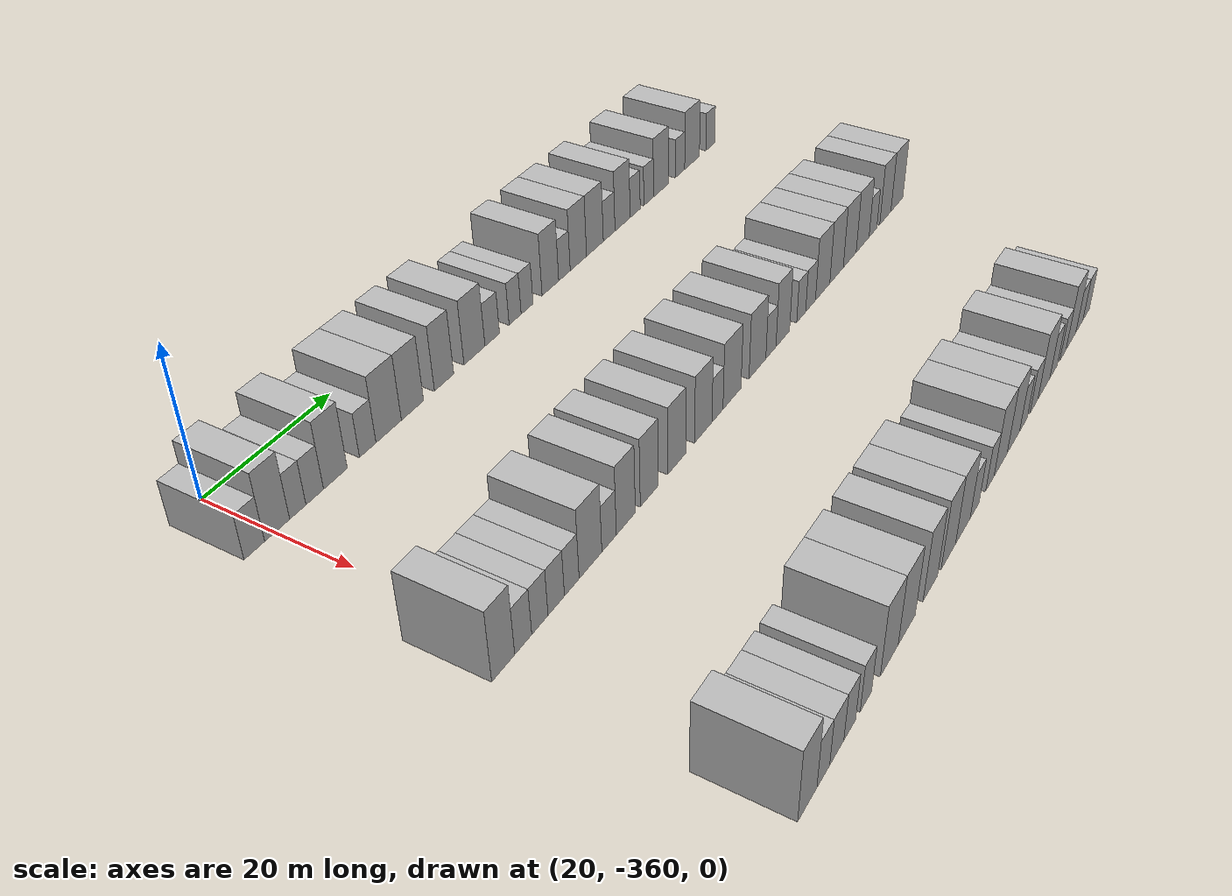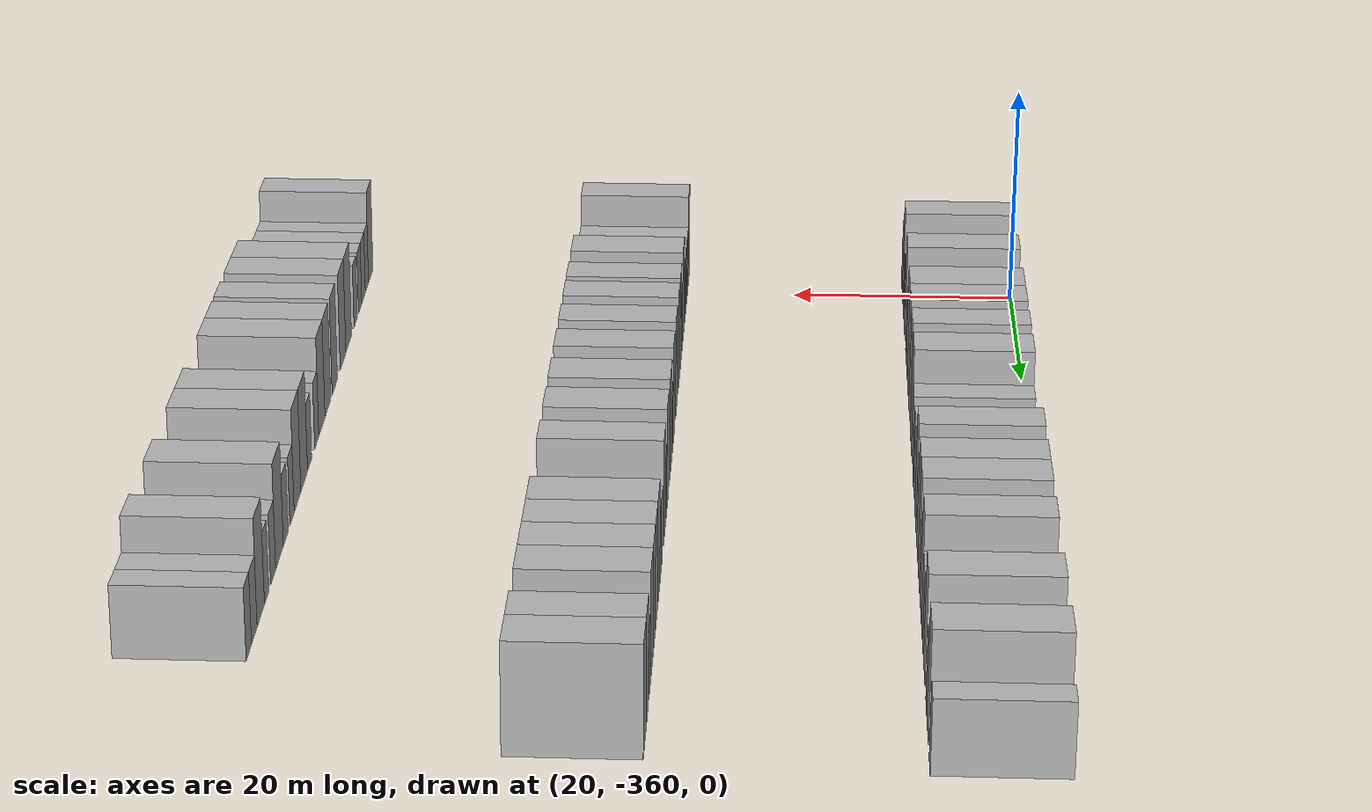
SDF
<sdf version="1.6">
 <world name="default">
  <model name="building_25">
   <static>1</static>
   <pose>25.0000 -362.9609 0 0.000000 0.000000 0.000000</pose>
   <link name="link">
    <pose>0 0 3.00 0 0 0</pose>
    <collision name="collision"><geometry><box><size>10.0000 2.9243 6.0000</size></box></geometry></collision>
    <visual name="visual">
     <cast_shadows>0</cast_shadows>
     <geometry><box><size>10.0000 2.9243 6.0000</size></box></geometry>
     <material>
      <script>
       <uri>model://HANNAS_wall/materials/scripts</uri>
       <uri>model://HANNAS_wall/materials/textures</uri>
       <name>vrc/HANNAS_wall</name>
      </script>
     </material>
    </visual>
   </link>
  </model>
  <model name="building_26">
   <static>1</static>
   <pose>25.0000 -359.6762 0 0.000000 0.000000 0.000000</pose>
   <link name="link">
    <pose>0 0 4.50 0 0 0</pose>
    <collision name="collision"><geometry><box><size>10.0000 3.6451 9.0000</size></box></geometry></collision>
    <visual name="visual">
     <cast_shadows>0</cast_shadows>
     <geometry><box><size>10.0000 3.6451 9.0000</size></box></geometry>
     <material>
      <script>
       <uri>model://HANNAS_wall/materials/scripts</uri>
       <uri>model://HANNAS_wall/materials/textures</uri>
       <name>vrc/HANNAS_wall</name>
      </script>
     </material>
    </visual>
   </link>
  </model>
  <model name="building_27">
   <static>1</static>
   <pose>25.0000 -356.6252 0 0.000000 0.000000 0.000000</pose>
   <link name="link">
    <pose>0 0 3.00 0 0 0</pose>
    <collision name="collision"><geometry><box><size>10.0000 2.4570 6.0000</size></box></geometry></collision>
    <visual name="visual">
     <cast_shadows>0</cast_shadows>
     <geometry><box><size>10.0000 2.4570 6.0000</size></box></geometry>
     <material>
      <script>
       <uri>model://HANNAS_wall/materials/scripts</uri>
       <uri>model://HANNAS_wall/materials/textures</uri>
       <name>vrc/HANNAS_wall</name>
      </script>
     </material>
    </visual>
   </link>
  </model>
  <model name="building_28">
   <static>1</static>
   <pose>25.0000 -354.0434 0 0.000000 0.000000 0.000000</pose>
   <link name="link">
    <pose>0 0 3.00 0 0 0</pose>
    <collision name="collision"><geometry><box><size>10.0000 2.7066 6.0000</size></box></geometry></collision>
    <visual name="visual">
     <cast_shadows>0</cast_shadows>
     <geometry><box><size>10.0000 2.7066 6.0000</size></box></geometry>
     <material>
      <script>
       <uri>model://HANNAS_wall/materials/scripts</uri>
       <uri>model://HANNAS_wall/materials/textures</uri>
       <name>vrc/HANNAS_wall</name>
      </script>
     </material>
    </visual>
   </link>
  </model>
  <model name="building_29">
   <static>1</static>
   <pose>25.0000 -350.8006 0 0.000000 0.000000 0.000000</pose>
   <link name="link">
    <pose>0 0 4.50 0 0 0</pose>
    <collision name="collision"><geometry><box><size>10.0000 3.7789 9.0000</size></box></geometry></collision>
    <visual name="visual">
     <cast_shadows>0</cast_shadows>
     <geometry><box><size>10.0000 3.7789 9.0000</size></box></geometry>
     <material>
      <script>
       <uri>model://HANNAS_wall/materials/scripts</uri>
       <uri>model://HANNAS_wall/materials/textures</uri>
       <name>vrc/HANNAS_wall</name>
      </script>
     </material>
    </visual>
   </link>
  </model>
  <model name="building_30">
   <static>1</static>
   <pose>25.0000 -345.5308 0 0.000000 0.000000 0.000000</pose>
   <link name="link">
    <pose>0 0 3.00 0 0 0</pose>
    <collision name="collision"><geometry><box><size>10.0000 2.7607 6.0000</size></box></geometry></collision>
    <visual name="visual">
     <cast_shadows>0</cast_shadows>
     <geometry><box><size>10.0000 2.7607 6.0000</size></box></geometry>
     <material>
      <script>
       <uri>model://HANNAS_wall/materials/scripts</uri>
       <uri>model://HANNAS_wall/materials/textures</uri>
       <name>vrc/HANNAS_wall</name>
      </script>
     </material>
    </visual>
   </link>
  </model>
  <model name="building_31">
   <static>1</static>
   <pose>25.0000 -341.9601 0 0.000000 0.000000 0.000000</pose>
   <link name="link">
    <pose>0 0 4.50 0 0 0</pose>
    <collision name="collision"><geometry><box><size>10.0000 4.3808 9.0000</size></box></geometry></collision>
    <visual name="visual">
     <cast_shadows>0</cast_shadows>
     <geometry><box><size>10.0000 4.3808 9.0000</size></box></geometry>
     <material>
      <script>
       <uri>model://HANNAS_wall/materials/scripts</uri>
       <uri>model://HANNAS_wall/materials/textures</uri>
       <name>vrc/HANNAS_wall</name>
      </script>
     </material>
    </visual>
   </link>
  </model>
  <model name="building_32">
   <static>1</static>
   <pose>25.0000 -337.7786 0 0.000000 0.000000 0.000000</pose>
   <link name="link">
    <pose>0 0 4.50 0 0 0</pose>
    <collision name="collision"><geometry><box><size>10.0000 3.9821 9.0000</size></box></geometry></collision>
    <visual name="visual">
     <cast_shadows>0</cast_shadows>
     <geometry><box><size>10.0000 3.9821 9.0000</size></box></geometry>
     <material>
      <script>
       <uri>model://HANNAS_wall/materials/scripts</uri>
       <uri>model://HANNAS_wall/materials/textures</uri>
       <name>vrc/HANNAS_wall</name>
      </script>
     </material>
    </visual>
   </link>
  </model>
  <model name="building_33">
   <static>1</static>
   <pose>25.0000 -331.9668 0 0.000000 0.000000 0.000000</pose>
   <link name="link">
    <pose>0 0 4.50 0 0 0</pose>
    <collision name="collision"><geometry><box><size>10.0000 3.6417 9.0000</size></box></geometry></collision>
    <visual name="visual">
     <cast_shadows>0</cast_shadows>
     <geometry><box><size>10.0000 3.6417 9.0000</size></box></geometry>
     <material>
      <script>
       <uri>model://HANNAS_wall/materials/scripts</uri>
       <uri>model://HANNAS_wall/materials/textures</uri>
       <name>vrc/HANNAS_wall</name>
      </script>
     </material>
    </visual>
   </link>
  </model>
  <model name="building_34">
   <static>1</static>
   <pose>25.0000 -326.0694 0 0.000000 0.000000 0.000000</pose>
   <link name="link">
    <pose>0 0 4.50 0 0 0</pose>
    <collision name="collision"><geometry><box><size>10.0000 4.1531 9.0000</size></box></geometry></collision>
    <visual name="visual">
     <cast_shadows>0</cast_shadows>
     <geometry><box><size>10.0000 4.1531 9.0000</size></box></geometry>
     <material>
      <script>
       <uri>model://HANNAS_wall/materials/scripts</uri>
       <uri>model://HANNAS_wall/materials/textures</uri>
       <name>vrc/HANNAS_wall</name>
      </script>
     </material>
    </visual>
   </link>
  </model>
  <model name="building_35">
   <static>1</static>
   <pose>25.0000 -322.5050 0 0.000000 0.000000 0.000000</pose>
   <link name="link">
    <pose>0 0 3.00 0 0 0</pose>
    <collision name="collision"><geometry><box><size>10.0000 2.9756 6.0000</size></box></geometry></collision>
    <visual name="visual">
     <cast_shadows>0</cast_shadows>
     <geometry><box><size>10.0000 2.9756 6.0000</size></box></geometry>
     <material>
      <script>
       <uri>model://HANNAS_wall/materials/scripts</uri>
       <uri>model://HANNAS_wall/materials/textures</uri>
       <name>vrc/HANNAS_wall</name>
      </script>
     </material>
    </visual>
   </link>
  </model>
  <model name="building_36">
   <static>1</static>
   <pose>25.0000 -317.7281 0 0.000000 0.000000 0.000000</pose>
   <link name="link">
    <pose>0 0 3.00 0 0 0</pose>
    <collision name="collision"><geometry><box><size>10.0000 2.5782 6.0000</size></box></geometry></collision>
    <visual name="visual">
     <cast_shadows>0</cast_shadows>
     <geometry><box><size>10.0000 2.5782 6.0000</size></box></geometry>
     <material>
      <script>
       <uri>model://HANNAS_wall/materials/scripts</uri>
       <uri>model://HANNAS_wall/materials/textures</uri>
       <name>vrc/HANNAS_wall</name>
      </script>
     </material>
    </visual>
   </link>
  </model>
  <model name="building_37">
   <static>1</static>
   <pose>25.0000 -315.1455 0 0.000000 0.000000 0.000000</pose>
   <link name="link">
    <pose>0 0 3.00 0 0 0</pose>
    <collision name="collision"><geometry><box><size>10.0000 2.5869 6.0000</size></box></geometry></collision>
    <visual name="visual">
     <cast_shadows>0</cast_shadows>
     <geometry><box><size>10.0000 2.5869 6.0000</size></box></geometry>
     <material>
      <script>
       <uri>model://HANNAS_wall/materials/scripts</uri>
       <uri>model://HANNAS_wall/materials/textures</uri>
       <name>vrc/HANNAS_wall</name>
      </script>
     </material>
    </visual>
   </link>
  </model>
  <model name="building_38">
   <static>1</static>
   <pose>25.0000 -309.9671 0 0.000000 0.000000 0.000000</pose>
   <link name="link">
    <pose>0 0 4.50 0 0 0</pose>
    <collision name="collision"><geometry><box><size>10.0000 3.7700 9.0000</size></box></geometry></collision>
    <visual name="visual">
     <cast_shadows>0</cast_shadows>
     <geometry><box><size>10.0000 3.7700 9.0000</size></box></geometry>
     <material>
      <script>
       <uri>model://HANNAS_wall/materials/scripts</uri>
       <uri>model://HANNAS_wall/materials/textures</uri>
       <name>vrc/HANNAS_wall</name>
      </script>
     </material>
    </visual>
   </link>
  </model>
  <model name="building_39">
   <static>1</static>
   <pose>25.0000 -306.7445 0 0.000000 0.000000 0.000000</pose>
   <link name="link">
    <pose>0 0 3.00 0 0 0</pose>
    <collision name="collision"><geometry><box><size>10.0000 2.6752 6.0000</size></box></geometry></collision>
    <visual name="visual">
     <cast_shadows>0</cast_shadows>
     <geometry><box><size>10.0000 2.6752 6.0000</size></box></geometry>
     <material>
      <script>
       <uri>model://HANNAS_wall/materials/scripts</uri>
       <uri>model://HANNAS_wall/materials/textures</uri>
       <name>vrc/HANNAS_wall</name>
      </script>
     </material>
    </visual>
   </link>
  </model>
  <model name="building_40">
   <static>1</static>
   <pose>25.0000 -303.4571 0 0.000000 0.000000 0.000000</pose>
   <link name="link">
    <pose>0 0 4.50 0 0 0</pose>
    <collision name="collision"><geometry><box><size>10.0000 3.8995 9.0000</size></box></geometry></collision>
    <visual name="visual">
     <cast_shadows>0</cast_shadows>
     <geometry><box><size>10.0000 3.8995 9.0000</size></box></geometry>
     <material>
      <script>
       <uri>model://HANNAS_wall/materials/scripts</uri>
       <uri>model://HANNAS_wall/materials/textures</uri>
       <name>vrc/HANNAS_wall</name>
      </script>
     </material>
    </visual>
   </link>
  </model>
  <model name="building_41">
   <static>1</static>
   <pose>25.0000 -299.4450 0 0.000000 0.000000 0.000000</pose>
   <link name="link">
    <pose>0 0 4.50 0 0 0</pose>
    <collision name="collision"><geometry><box><size>10.0000 4.1248 9.0000</size></box></geometry></collision>
    <visual name="visual">
     <cast_shadows>0</cast_shadows>
     <geometry><box><size>10.0000 4.1248 9.0000</size></box></geometry>
     <material>
      <script>
       <uri>model://HANNAS_wall/materials/scripts</uri>
       <uri>model://HANNAS_wall/materials/textures</uri>
       <name>vrc/HANNAS_wall</name>
      </script>
     </material>
    </visual>
   </link>
  </model>
  <model name="building_42">
   <static>1</static>
   <pose>25.0000 -295.9050 0 0.000000 0.000000 0.000000</pose>
   <link name="link">
    <pose>0 0 3.00 0 0 0</pose>
    <collision name="collision"><geometry><box><size>10.0000 2.9551 6.0000</size></box></geometry></collision>
    <visual name="visual">
     <cast_shadows>0</cast_shadows>
     <geometry><box><size>10.0000 2.9551 6.0000</size></box></geometry>
     <material>
      <script>
       <uri>model://HANNAS_wall/materials/scripts</uri>
       <uri>model://HANNAS_wall/materials/textures</uri>
       <name>vrc/HANNAS_wall</name>
      </script>
     </material>
    </visual>
   </link>
  </model>
  <model name="building_43">
   <static>1</static>
   <pose>25.0000 -292.4702 0 0.000000 0.000000 0.000000</pose>
   <link name="link">
    <pose>0 0 4.50 0 0 0</pose>
    <collision name="collision"><geometry><box><size>10.0000 3.9146 9.0000</size></box></geometry></collision>
    <visual name="visual">
     <cast_shadows>0</cast_shadows>
     <geometry><box><size>10.0000 3.9146 9.0000</size></box></geometry>
     <material>
      <script>
       <uri>model://HANNAS_wall/materials/scripts</uri>
       <uri>model://HANNAS_wall/materials/textures</uri>
       <name>vrc/HANNAS_wall</name>
      </script>
     </material>
    </visual>
   </link>
  </model>
  <model name="building_44">
   <static>1</static>
   <pose>25.0000 -289.1764 0 0.000000 0.000000 0.000000</pose>
   <link name="link">
    <pose>0 0 3.00 0 0 0</pose>
    <collision name="collision"><geometry><box><size>10.0000 2.6730 6.0000</size></box></geometry></collision>
    <visual name="visual">
     <cast_shadows>0</cast_shadows>
     <geometry><box><size>10.0000 2.6730 6.0000</size></box></geometry>
     <material>
      <script>
       <uri>model://HANNAS_wall/materials/scripts</uri>
       <uri>model://HANNAS_wall/materials/textures</uri>
       <name>vrc/HANNAS_wall</name>
      </script>
     </material>
    </visual>
   </link>
  </model>
  <model name="building_45">
   <static>1</static>
   <pose>25.0000 -285.5234 0 0.000000 0.000000 0.000000</pose>
   <link name="link">
    <pose>0 0 3.00 0 0 0</pose>
    <collision name="collision"><geometry><box><size>10.0000 2.6329 6.0000</size></box></geometry></collision>
    <visual name="visual">
     <cast_shadows>0</cast_shadows>
     <geometry><box><size>10.0000 2.6329 6.0000</size></box></geometry>
     <material>
      <script>
       <uri>model://HANNAS_wall/materials/scripts</uri>
       <uri>model://HANNAS_wall/materials/textures</uri>
       <name>vrc/HANNAS_wall</name>
      </script>
     </material>
    </visual>
   </link>
  </model>
  <model name="building_46">
   <static>1</static>
   <pose>25.0000 -282.1227 0 0.000000 0.000000 0.000000</pose>
   <link name="link">
    <pose>0 0 4.50 0 0 0</pose>
    <collision name="collision"><geometry><box><size>10.0000 4.1686 9.0000</size></box></geometry></collision>
    <visual name="visual">
     <cast_shadows>0</cast_shadows>
     <geometry><box><size>10.0000 4.1686 9.0000</size></box></geometry>
     <material>
      <script>
       <uri>model://HANNAS_wall/materials/scripts</uri>
       <uri>model://HANNAS_wall/materials/textures</uri>
       <name>vrc/HANNAS_wall</name>
      </script>
     </material>
    </visual>
   </link>
  </model>
  <model name="building_47">
   <static>1</static>
   <pose>25.0000 -276.6991 0 0.000000 0.000000 0.000000</pose>
   <link name="link">
    <pose>0 0 3.00 0 0 0</pose>
    <collision name="collision"><geometry><box><size>10.0000 2.6786 6.0000</size></box></geometry></collision>
    <visual name="visual">
     <cast_shadows>0</cast_shadows>
     <geometry><box><size>10.0000 2.6786 6.0000</size></box></geometry>
     <material>
      <script>
       <uri>model://HANNAS_wall/materials/scripts</uri>
       <uri>model://HANNAS_wall/materials/textures</uri>
       <name>vrc/HANNAS_wall</name>
      </script>
     </material>
    </visual>
   </link>
  </model>
  <model name="building_48">
   <static>1</static>
   <pose>25.0000 -273.1590 0 0.000000 0.000000 0.000000</pose>
   <link name="link">
    <pose>0 0 4.50 0 0 0</pose>
    <collision name="collision"><geometry><box><size>10.0000 4.4017 9.0000</size></box></geometry></collision>
    <visual name="visual">
     <cast_shadows>0</cast_shadows>
     <geometry><box><size>10.0000 4.4017 9.0000</size></box></geometry>
     <material>
      <script>
       <uri>model://HANNAS_wall/materials/scripts</uri>
       <uri>model://HANNAS_wall/materials/textures</uri>
       <name>vrc/HANNAS_wall</name>
      </script>
     </material>
    </visual>
   </link>
  </model>
  <model name="building_49">
   <static>1</static>
   <pose>25.0000 -267.6129 0 0.000000 0.000000 0.000000</pose>
   <link name="link">
    <pose>0 0 3.00 0 0 0</pose>
    <collision name="collision"><geometry><box><size>10.0000 2.6904 6.0000</size></box></geometry></collision>
    <visual name="visual">
     <cast_shadows>0</cast_shadows>
     <geometry><box><size>10.0000 2.6904 6.0000</size></box></geometry>
     <material>
      <script>
       <uri>model://HANNAS_wall/materials/scripts</uri>
       <uri>model://HANNAS_wall/materials/textures</uri>
       <name>vrc/HANNAS_wall</name>
      </script>
     </material>
    </visual>
   </link>
  </model>
  <model name="building_260">
   <static>1</static>
   <pose>55.0000 -363.2526 0 0.000000 0.000000 0.000000</pose>
   <link name="link">
    <pose>0 0 4.50 0 0 0</pose>
    <collision name="collision"><geometry><box><size>10.0000 3.6219 9.0000</size></box></geometry></collision>
    <visual name="visual">
     <cast_shadows>0</cast_shadows>
     <geometry><box><size>10.0000 3.6219 9.0000</size></box></geometry>
     <material>
      <script>
       <uri>model://HANNAS_wall/materials/scripts</uri>
       <uri>model://HANNAS_wall/materials/textures</uri>
       <name>vrc/HANNAS_wall</name>
      </script>
     </material>
    </visual>
   </link>
  </model>
  <model name="building_261">
   <static>1</static>
   <pose>55.0000 -360.0576 0 0.000000 0.000000 0.000000</pose>
   <link name="link">
    <pose>0 0 3.00 0 0 0</pose>
    <collision name="collision"><geometry><box><size>10.0000 2.7680 6.0000</size></box></geometry></collision>
    <visual name="visual">
     <cast_shadows>0</cast_shadows>
     <geometry><box><size>10.0000 2.7680 6.0000</size></box></geometry>
     <material>
      <script>
       <uri>model://HANNAS_wall/materials/scripts</uri>
       <uri>model://HANNAS_wall/materials/textures</uri>
       <name>vrc/HANNAS_wall</name>
      </script>
     </material>
    </visual>
   </link>
  </model>
  <model name="building_262">
   <static>1</static>
   <pose>55.0000 -357.3143 0 0.000000 0.000000 0.000000</pose>
   <link name="link">
    <pose>0 0 3.00 0 0 0</pose>
    <collision name="collision"><geometry><box><size>10.0000 2.7187 6.0000</size></box></geometry></collision>
    <visual name="visual">
     <cast_shadows>0</cast_shadows>
     <geometry><box><size>10.0000 2.7187 6.0000</size></box></geometry>
     <material>
      <script>
       <uri>model://HANNAS_wall/materials/scripts</uri>
       <uri>model://HANNAS_wall/materials/textures</uri>
       <name>vrc/HANNAS_wall</name>
      </script>
     </material>
    </visual>
   </link>
  </model>
  <model name="building_263">
   <static>1</static>
   <pose>55.0000 -354.5378 0 0.000000 0.000000 0.000000</pose>
   <link name="link">
    <pose>0 0 3.00 0 0 0</pose>
    <collision name="collision"><geometry><box><size>10.0000 2.8343 6.0000</size></box></geometry></collision>
    <visual name="visual">
     <cast_shadows>0</cast_shadows>
     <geometry><box><size>10.0000 2.8343 6.0000</size></box></geometry>
     <material>
      <script>
       <uri>model://HANNAS_wall/materials/scripts</uri>
       <uri>model://HANNAS_wall/materials/textures</uri>
       <name>vrc/HANNAS_wall</name>
      </script>
     </material>
    </visual>
   </link>
  </model>
  <model name="building_264">
   <static>1</static>
   <pose>55.0000 -351.8202 0 0.000000 0.000000 0.000000</pose>
   <link name="link">
    <pose>0 0 3.00 0 0 0</pose>
    <collision name="collision"><geometry><box><size>10.0000 2.6008 6.0000</size></box></geometry></collision>
    <visual name="visual">
     <cast_shadows>0</cast_shadows>
     <geometry><box><size>10.0000 2.6008 6.0000</size></box></geometry>
     <material>
      <script>
       <uri>model://HANNAS_wall/materials/scripts</uri>
       <uri>model://HANNAS_wall/materials/textures</uri>
       <name>vrc/HANNAS_wall</name>
      </script>
     </material>
    </visual>
   </link>
  </model>
  <model name="building_265">
   <static>1</static>
   <pose>55.0000 -348.4335 0 0.000000 0.000000 0.000000</pose>
   <link name="link">
    <pose>0 0 4.50 0 0 0</pose>
    <collision name="collision"><geometry><box><size>10.0000 4.1727 9.0000</size></box></geometry></collision>
    <visual name="visual">
     <cast_shadows>0</cast_shadows>
     <geometry><box><size>10.0000 4.1727 9.0000</size></box></geometry>
     <material>
      <script>
       <uri>model://HANNAS_wall/materials/scripts</uri>
       <uri>model://HANNAS_wall/materials/textures</uri>
       <name>vrc/HANNAS_wall</name>
      </script>
     </material>
    </visual>
   </link>
  </model>
  <model name="building_266">
   <static>1</static>
   <pose>55.0000 -344.9704 0 0.000000 0.000000 0.000000</pose>
   <link name="link">
    <pose>0 0 3.00 0 0 0</pose>
    <collision name="collision"><geometry><box><size>10.0000 2.7534 6.0000</size></box></geometry></collision>
    <visual name="visual">
     <cast_shadows>0</cast_shadows>
     <geometry><box><size>10.0000 2.7534 6.0000</size></box></geometry>
     <material>
      <script>
       <uri>model://HANNAS_wall/materials/scripts</uri>
       <uri>model://HANNAS_wall/materials/textures</uri>
       <name>vrc/HANNAS_wall</name>
      </script>
     </material>
    </visual>
   </link>
  </model>
  <model name="building_267">
   <static>1</static>
   <pose>55.0000 -341.7334 0 0.000000 0.000000 0.000000</pose>
   <link name="link">
    <pose>0 0 4.50 0 0 0</pose>
    <collision name="collision"><geometry><box><size>10.0000 3.7206 9.0000</size></box></geometry></collision>
    <visual name="visual">
     <cast_shadows>0</cast_shadows>
     <geometry><box><size>10.0000 3.7206 9.0000</size></box></geometry>
     <material>
      <script>
       <uri>model://HANNAS_wall/materials/scripts</uri>
       <uri>model://HANNAS_wall/materials/textures</uri>
       <name>vrc/HANNAS_wall</name>
      </script>
     </material>
    </visual>
   </link>
  </model>
  <model name="building_268">
   <static>1</static>
   <pose>55.0000 -337.0198 0 0.000000 0.000000 0.000000</pose>
   <link name="link">
    <pose>0 0 4.50 0 0 0</pose>
    <collision name="collision"><geometry><box><size>10.0000 3.7068 9.0000</size></box></geometry></collision>
    <visual name="visual">
     <cast_shadows>0</cast_shadows>
     <geometry><box><size>10.0000 3.7068 9.0000</size></box></geometry>
     <material>
      <script>
       <uri>model://HANNAS_wall/materials/scripts</uri>
       <uri>model://HANNAS_wall/materials/textures</uri>
       <name>vrc/HANNAS_wall</name>
      </script>
     </material>
    </visual>
   </link>
  </model>
  <model name="building_269">
   <static>1</static>
   <pose>55.0000 -331.2343 0 0.000000 0.000000 0.000000</pose>
   <link name="link">
    <pose>0 0 4.50 0 0 0</pose>
    <collision name="collision"><geometry><box><size>10.0000 3.8641 9.0000</size></box></geometry></collision>
    <visual name="visual">
     <cast_shadows>0</cast_shadows>
     <geometry><box><size>10.0000 3.8641 9.0000</size></box></geometry>
     <material>
      <script>
       <uri>model://HANNAS_wall/materials/scripts</uri>
       <uri>model://HANNAS_wall/materials/textures</uri>
       <name>vrc/HANNAS_wall</name>
      </script>
     </material>
    </visual>
   </link>
  </model>
  <model name="building_270">
   <static>1</static>
   <pose>55.0000 -325.3162 0 0.000000 0.000000 0.000000</pose>
   <link name="link">
    <pose>0 0 4.50 0 0 0</pose>
    <collision name="collision"><geometry><box><size>10.0000 3.9721 9.0000</size></box></geometry></collision>
    <visual name="visual">
     <cast_shadows>0</cast_shadows>
     <geometry><box><size>10.0000 3.9721 9.0000</size></box></geometry>
     <material>
      <script>
       <uri>model://HANNAS_wall/materials/scripts</uri>
       <uri>model://HANNAS_wall/materials/textures</uri>
       <name>vrc/HANNAS_wall</name>
      </script>
     </material>
    </visual>
   </link>
  </model>
  <model name="building_271">
   <static>1</static>
   <pose>55.0000 -322.0267 0 0.000000 0.000000 0.000000</pose>
   <link name="link">
    <pose>0 0 3.00 0 0 0</pose>
    <collision name="collision"><geometry><box><size>10.0000 2.6071 6.0000</size></box></geometry></collision>
    <visual name="visual">
     <cast_shadows>0</cast_shadows>
     <geometry><box><size>10.0000 2.6071 6.0000</size></box></geometry>
     <material>
      <script>
       <uri>model://HANNAS_wall/materials/scripts</uri>
       <uri>model://HANNAS_wall/materials/textures</uri>
       <name>vrc/HANNAS_wall</name>
      </script>
     </material>
    </visual>
   </link>
  </model>
  <model name="building_272">
   <static>1</static>
   <pose>55.0000 -318.5299 0 0.000000 0.000000 0.000000</pose>
   <link name="link">
    <pose>0 0 4.50 0 0 0</pose>
    <collision name="collision"><geometry><box><size>10.0000 4.3866 9.0000</size></box></geometry></collision>
    <visual name="visual">
     <cast_shadows>0</cast_shadows>
     <geometry><box><size>10.0000 4.3866 9.0000</size></box></geometry>
     <material>
      <script>
       <uri>model://HANNAS_wall/materials/scripts</uri>
       <uri>model://HANNAS_wall/materials/textures</uri>
       <name>vrc/HANNAS_wall</name>
      </script>
     </material>
    </visual>
   </link>
  </model>
  <model name="building_273">
   <static>1</static>
   <pose>55.0000 -312.1667 0 0.000000 0.000000 0.000000</pose>
   <link name="link">
    <pose>0 0 4.50 0 0 0</pose>
    <collision name="collision"><geometry><box><size>10.0000 4.3397 9.0000</size></box></geometry></collision>
    <visual name="visual">
     <cast_shadows>0</cast_shadows>
     <geometry><box><size>10.0000 4.3397 9.0000</size></box></geometry>
     <material>
      <script>
       <uri>model://HANNAS_wall/materials/scripts</uri>
       <uri>model://HANNAS_wall/materials/textures</uri>
       <name>vrc/HANNAS_wall</name>
      </script>
     </material>
    </visual>
   </link>
  </model>
  <model name="building_274">
   <static>1</static>
   <pose>55.0000 -308.6492 0 0.000000 0.000000 0.000000</pose>
   <link name="link">
    <pose>0 0 3.00 0 0 0</pose>
    <collision name="collision"><geometry><box><size>10.0000 2.6953 6.0000</size></box></geometry></collision>
    <visual name="visual">
     <cast_shadows>0</cast_shadows>
     <geometry><box><size>10.0000 2.6953 6.0000</size></box></geometry>
     <material>
      <script>
       <uri>model://HANNAS_wall/materials/scripts</uri>
       <uri>model://HANNAS_wall/materials/textures</uri>
       <name>vrc/HANNAS_wall</name>
      </script>
     </material>
    </visual>
   </link>
  </model>
  <model name="building_275">
   <static>1</static>
   <pose>55.0000 -305.4517 0 0.000000 0.000000 0.000000</pose>
   <link name="link">
    <pose>0 0 4.50 0 0 0</pose>
    <collision name="collision"><geometry><box><size>10.0000 3.6998 9.0000</size></box></geometry></collision>
    <visual name="visual">
     <cast_shadows>0</cast_shadows>
     <geometry><box><size>10.0000 3.6998 9.0000</size></box></geometry>
     <material>
      <script>
       <uri>model://HANNAS_wall/materials/scripts</uri>
       <uri>model://HANNAS_wall/materials/textures</uri>
       <name>vrc/HANNAS_wall</name>
      </script>
     </material>
    </visual>
   </link>
  </model>
  <model name="building_276">
   <static>1</static>
   <pose>55.0000 -300.3296 0 0.000000 0.000000 0.000000</pose>
   <link name="link">
    <pose>0 0 3.00 0 0 0</pose>
    <collision name="collision"><geometry><box><size>10.0000 2.5444 6.0000</size></box></geometry></collision>
    <visual name="visual">
     <cast_shadows>0</cast_shadows>
     <geometry><box><size>10.0000 2.5444 6.0000</size></box></geometry>
     <material>
      <script>
       <uri>model://HANNAS_wall/materials/scripts</uri>
       <uri>model://HANNAS_wall/materials/textures</uri>
       <name>vrc/HANNAS_wall</name>
      </script>
     </material>
    </visual>
   </link>
  </model>
  <model name="building_277">
   <static>1</static>
   <pose>55.0000 -297.6324 0 0.000000 0.000000 0.000000</pose>
   <link name="link">
    <pose>0 0 3.00 0 0 0</pose>
    <collision name="collision"><geometry><box><size>10.0000 2.8501 6.0000</size></box></geometry></collision>
    <visual name="visual">
     <cast_shadows>0</cast_shadows>
     <geometry><box><size>10.0000 2.8501 6.0000</size></box></geometry>
     <material>
      <script>
       <uri>model://HANNAS_wall/materials/scripts</uri>
       <uri>model://HANNAS_wall/materials/textures</uri>
       <name>vrc/HANNAS_wall</name>
      </script>
     </material>
    </visual>
   </link>
  </model>
  <model name="building_278">
   <static>1</static>
   <pose>55.0000 -294.0642 0 0.000000 0.000000 0.000000</pose>
   <link name="link">
    <pose>0 0 4.50 0 0 0</pose>
    <collision name="collision"><geometry><box><size>10.0000 4.2862 9.0000</size></box></geometry></collision>
    <visual name="visual">
     <cast_shadows>0</cast_shadows>
     <geometry><box><size>10.0000 4.2862 9.0000</size></box></geometry>
     <material>
      <script>
       <uri>model://HANNAS_wall/materials/scripts</uri>
       <uri>model://HANNAS_wall/materials/textures</uri>
       <name>vrc/HANNAS_wall</name>
      </script>
     </material>
    </visual>
   </link>
  </model>
  <model name="building_279">
   <static>1</static>
   <pose>55.0000 -289.8347 0 0.000000 0.000000 0.000000</pose>
   <link name="link">
    <pose>0 0 4.50 0 0 0</pose>
    <collision name="collision"><geometry><box><size>10.0000 4.1728 9.0000</size></box></geometry></collision>
    <visual name="visual">
     <cast_shadows>0</cast_shadows>
     <geometry><box><size>10.0000 4.1728 9.0000</size></box></geometry>
     <material>
      <script>
       <uri>model://HANNAS_wall/materials/scripts</uri>
       <uri>model://HANNAS_wall/materials/textures</uri>
       <name>vrc/HANNAS_wall</name>
      </script>
     </material>
    </visual>
   </link>
  </model>
  <model name="building_280">
   <static>1</static>
   <pose>55.0000 -285.6936 0 0.000000 0.000000 0.000000</pose>
   <link name="link">
    <pose>0 0 4.50 0 0 0</pose>
    <collision name="collision"><geometry><box><size>10.0000 4.1095 9.0000</size></box></geometry></collision>
    <visual name="visual">
     <cast_shadows>0</cast_shadows>
     <geometry><box><size>10.0000 4.1095 9.0000</size></box></geometry>
     <material>
      <script>
       <uri>model://HANNAS_wall/materials/scripts</uri>
       <uri>model://HANNAS_wall/materials/textures</uri>
       <name>vrc/HANNAS_wall</name>
      </script>
     </material>
    </visual>
   </link>
  </model>
  <model name="building_281">
   <static>1</static>
   <pose>55.0000 -281.5155 0 0.000000 0.000000 0.000000</pose>
   <link name="link">
    <pose>0 0 4.50 0 0 0</pose>
    <collision name="collision"><geometry><box><size>10.0000 4.2467 9.0000</size></box></geometry></collision>
    <visual name="visual">
     <cast_shadows>0</cast_shadows>
     <geometry><box><size>10.0000 4.2467 9.0000</size></box></geometry>
     <material>
      <script>
       <uri>model://HANNAS_wall/materials/scripts</uri>
       <uri>model://HANNAS_wall/materials/textures</uri>
       <name>vrc/HANNAS_wall</name>
      </script>
     </material>
    </visual>
   </link>
  </model>
  <model name="building_282">
   <static>1</static>
   <pose>55.0000 -278.0725 0 0.000000 0.000000 0.000000</pose>
   <link name="link">
    <pose>0 0 3.00 0 0 0</pose>
    <collision name="collision"><geometry><box><size>10.0000 2.6393 6.0000</size></box></geometry></collision>
    <visual name="visual">
     <cast_shadows>0</cast_shadows>
     <geometry><box><size>10.0000 2.6393 6.0000</size></box></geometry>
     <material>
      <script>
       <uri>model://HANNAS_wall/materials/scripts</uri>
       <uri>model://HANNAS_wall/materials/textures</uri>
       <name>vrc/HANNAS_wall</name>
      </script>
     </material>
    </visual>
   </link>
  </model>
  <model name="building_283">
   <static>1</static>
   <pose>55.0000 -273.8058 0 0.000000 0.000000 0.000000</pose>
   <link name="link">
    <pose>0 0 4.50 0 0 0</pose>
    <collision name="collision"><geometry><box><size>10.0000 3.8942 9.0000</size></box></geometry></collision>
    <visual name="visual">
     <cast_shadows>0</cast_shadows>
     <geometry><box><size>10.0000 3.8942 9.0000</size></box></geometry>
     <material>
      <script>
       <uri>model://HANNAS_wall/materials/scripts</uri>
       <uri>model://HANNAS_wall/materials/textures</uri>
       <name>vrc/HANNAS_wall</name>
      </script>
     </material>
    </visual>
   </link>
  </model>
  <model name="building_284">
   <static>1</static>
   <pose>55.0000 -269.7121 0 0.000000 0.000000 0.000000</pose>
   <link name="link">
    <pose>0 0 4.50 0 0 0</pose>
    <collision name="collision"><geometry><box><size>10.0000 4.2932 9.0000</size></box></geometry></collision>
    <visual name="visual">
     <cast_shadows>0</cast_shadows>
     <geometry><box><size>10.0000 4.2932 9.0000</size></box></geometry>
     <material>
      <script>
       <uri>model://HANNAS_wall/materials/scripts</uri>
       <uri>model://HANNAS_wall/materials/textures</uri>
       <name>vrc/HANNAS_wall</name>
      </script>
     </material>
    </visual>
   </link>
  </model>
  <model name="building_488">
   <static>1</static>
   <pose>85.0000 -362.9184 0 0.000000 0.000000 0.000000</pose>
   <link name="link">
    <pose>0 0 4.50 0 0 0</pose>
    <collision name="collision"><geometry><box><size>10.0000 3.7234 9.0000</size></box></geometry></collision>
    <visual name="visual">
     <cast_shadows>0</cast_shadows>
     <geometry><box><size>10.0000 3.7234 9.0000</size></box></geometry>
     <material>
      <script>
       <uri>model://HANNAS_wall/materials/scripts</uri>
       <uri>model://HANNAS_wall/materials/textures</uri>
       <name>vrc/HANNAS_wall</name>
      </script>
     </material>
    </visual>
   </link>
  </model>
  <model name="building_489">
   <static>1</static>
   <pose>85.0000 -359.7767 0 0.000000 0.000000 0.000000</pose>
   <link name="link">
    <pose>0 0 3.00 0 0 0</pose>
    <collision name="collision"><geometry><box><size>10.0000 2.5599 6.0000</size></box></geometry></collision>
    <visual name="visual">
     <cast_shadows>0</cast_shadows>
     <geometry><box><size>10.0000 2.5599 6.0000</size></box></geometry>
     <material>
      <script>
       <uri>model://HANNAS_wall/materials/scripts</uri>
       <uri>model://HANNAS_wall/materials/textures</uri>
       <name>vrc/HANNAS_wall</name>
      </script>
     </material>
    </visual>
   </link>
  </model>
  <model name="building_490">
   <static>1</static>
   <pose>85.0000 -357.0274 0 0.000000 0.000000 0.000000</pose>
   <link name="link">
    <pose>0 0 3.00 0 0 0</pose>
    <collision name="collision"><geometry><box><size>10.0000 2.9387 6.0000</size></box></geometry></collision>
    <visual name="visual">
     <cast_shadows>0</cast_shadows>
     <geometry><box><size>10.0000 2.9387 6.0000</size></box></geometry>
     <material>
      <script>
       <uri>model://HANNAS_wall/materials/scripts</uri>
       <uri>model://HANNAS_wall/materials/textures</uri>
       <name>vrc/HANNAS_wall</name>
      </script>
     </material>
    </visual>
   </link>
  </model>
  <model name="building_491">
   <static>1</static>
   <pose>85.0000 -354.3029 0 0.000000 0.000000 0.000000</pose>
   <link name="link">
    <pose>0 0 3.00 0 0 0</pose>
    <collision name="collision"><geometry><box><size>10.0000 2.5103 6.0000</size></box></geometry></collision>
    <visual name="visual">
     <cast_shadows>0</cast_shadows>
     <geometry><box><size>10.0000 2.5103 6.0000</size></box></geometry>
     <material>
      <script>
       <uri>model://HANNAS_wall/materials/scripts</uri>
       <uri>model://HANNAS_wall/materials/textures</uri>
       <name>vrc/HANNAS_wall</name>
      </script>
     </material>
    </visual>
   </link>
  </model>
  <model name="building_492">
   <static>1</static>
   <pose>85.0000 -350.7763 0 0.000000 0.000000 0.000000</pose>
   <link name="link">
    <pose>0 0 3.00 0 0 0</pose>
    <collision name="collision"><geometry><box><size>10.0000 2.5428 6.0000</size></box></geometry></collision>
    <visual name="visual">
     <cast_shadows>0</cast_shadows>
     <geometry><box><size>10.0000 2.5428 6.0000</size></box></geometry>
     <material>
      <script>
       <uri>model://HANNAS_wall/materials/scripts</uri>
       <uri>model://HANNAS_wall/materials/textures</uri>
       <name>vrc/HANNAS_wall</name>
      </script>
     </material>
    </visual>
   </link>
  </model>
  <model name="building_493">
   <static>1</static>
   <pose>85.0000 -345.3913 0 0.000000 0.000000 0.000000</pose>
   <link name="link">
    <pose>0 0 4.50 0 0 0</pose>
    <collision name="collision"><geometry><box><size>10.0000 4.2272 9.0000</size></box></geometry></collision>
    <visual name="visual">
     <cast_shadows>0</cast_shadows>
     <geometry><box><size>10.0000 4.2272 9.0000</size></box></geometry>
     <material>
      <script>
       <uri>model://HANNAS_wall/materials/scripts</uri>
       <uri>model://HANNAS_wall/materials/textures</uri>
       <name>vrc/HANNAS_wall</name>
      </script>
     </material>
    </visual>
   </link>
  </model>
  <model name="building_494">
   <static>1</static>
   <pose>85.0000 -341.1644 0 0.000000 0.000000 0.000000</pose>
   <link name="link">
    <pose>0 0 4.50 0 0 0</pose>
    <collision name="collision"><geometry><box><size>10.0000 4.2266 9.0000</size></box></geometry></collision>
    <visual name="visual">
     <cast_shadows>0</cast_shadows>
     <geometry><box><size>10.0000 4.2266 9.0000</size></box></geometry>
     <material>
      <script>
       <uri>model://HANNAS_wall/materials/scripts</uri>
       <uri>model://HANNAS_wall/materials/textures</uri>
       <name>vrc/HANNAS_wall</name>
      </script>
     </material>
    </visual>
   </link>
  </model>
  <model name="building_495">
   <static>1</static>
   <pose>85.0000 -335.1422 0 0.000000 0.000000 0.000000</pose>
   <link name="link">
    <pose>0 0 4.50 0 0 0</pose>
    <collision name="collision"><geometry><box><size>10.0000 3.8176 9.0000</size></box></geometry></collision>
    <visual name="visual">
     <cast_shadows>0</cast_shadows>
     <geometry><box><size>10.0000 3.8176 9.0000</size></box></geometry>
     <material>
      <script>
       <uri>model://HANNAS_wall/materials/scripts</uri>
       <uri>model://HANNAS_wall/materials/textures</uri>
       <name>vrc/HANNAS_wall</name>
      </script>
     </material>
    </visual>
   </link>
  </model>
  <model name="building_496">
   <static>1</static>
   <pose>85.0000 -330.2532 0 0.000000 0.000000 0.000000</pose>
   <link name="link">
    <pose>0 0 4.50 0 0 0</pose>
    <collision name="collision"><geometry><box><size>10.0000 3.9604 9.0000</size></box></geometry></collision>
    <visual name="visual">
     <cast_shadows>0</cast_shadows>
     <geometry><box><size>10.0000 3.9604 9.0000</size></box></geometry>
     <material>
      <script>
       <uri>model://HANNAS_wall/materials/scripts</uri>
       <uri>model://HANNAS_wall/materials/textures</uri>
       <name>vrc/HANNAS_wall</name>
      </script>
     </material>
    </visual>
   </link>
  </model>
  <model name="building_497">
   <static>1</static>
   <pose>85.0000 -326.1658 0 0.000000 0.000000 0.000000</pose>
   <link name="link">
    <pose>0 0 4.50 0 0 0</pose>
    <collision name="collision"><geometry><box><size>10.0000 4.2145 9.0000</size></box></geometry></collision>
    <visual name="visual">
     <cast_shadows>0</cast_shadows>
     <geometry><box><size>10.0000 4.2145 9.0000</size></box></geometry>
     <material>
      <script>
       <uri>model://HANNAS_wall/materials/scripts</uri>
       <uri>model://HANNAS_wall/materials/textures</uri>
       <name>vrc/HANNAS_wall</name>
      </script>
     </material>
    </visual>
   </link>
  </model>
  <model name="building_498">
   <static>1</static>
   <pose>85.0000 -322.7018 0 0.000000 0.000000 0.000000</pose>
   <link name="link">
    <pose>0 0 3.00 0 0 0</pose>
    <collision name="collision"><geometry><box><size>10.0000 2.7136 6.0000</size></box></geometry></collision>
    <visual name="visual">
     <cast_shadows>0</cast_shadows>
     <geometry><box><size>10.0000 2.7136 6.0000</size></box></geometry>
     <material>
      <script>
       <uri>model://HANNAS_wall/materials/scripts</uri>
       <uri>model://HANNAS_wall/materials/textures</uri>
       <name>vrc/HANNAS_wall</name>
      </script>
     </material>
    </visual>
   </link>
  </model>
  <model name="building_499">
   <static>1</static>
   <pose>85.0000 -318.0299 0 0.000000 0.000000 0.000000</pose>
   <link name="link">
    <pose>0 0 3.00 0 0 0</pose>
    <collision name="collision"><geometry><box><size>10.0000 2.6300 6.0000</size></box></geometry></collision>
    <visual name="visual">
     <cast_shadows>0</cast_shadows>
     <geometry><box><size>10.0000 2.6300 6.0000</size></box></geometry>
     <material>
      <script>
       <uri>model://HANNAS_wall/materials/scripts</uri>
       <uri>model://HANNAS_wall/materials/textures</uri>
       <name>vrc/HANNAS_wall</name>
      </script>
     </material>
    </visual>
   </link>
  </model>
  <model name="building_500">
   <static>1</static>
   <pose>85.0000 -314.5960 0 0.000000 0.000000 0.000000</pose>
   <link name="link">
    <pose>0 0 4.50 0 0 0</pose>
    <collision name="collision"><geometry><box><size>10.0000 4.2379 9.0000</size></box></geometry></collision>
    <visual name="visual">
     <cast_shadows>0</cast_shadows>
     <geometry><box><size>10.0000 4.2379 9.0000</size></box></geometry>
     <material>
      <script>
       <uri>model://HANNAS_wall/materials/scripts</uri>
       <uri>model://HANNAS_wall/materials/textures</uri>
       <name>vrc/HANNAS_wall</name>
      </script>
     </material>
    </visual>
   </link>
  </model>
  <model name="building_501">
   <static>1</static>
   <pose>85.0000 -310.3951 0 0.000000 0.000000 0.000000</pose>
   <link name="link">
    <pose>0 0 4.50 0 0 0</pose>
    <collision name="collision"><geometry><box><size>10.0000 4.1639 9.0000</size></box></geometry></collision>
    <visual name="visual">
     <cast_shadows>0</cast_shadows>
     <geometry><box><size>10.0000 4.1639 9.0000</size></box></geometry>
     <material>
      <script>
       <uri>model://HANNAS_wall/materials/scripts</uri>
       <uri>model://HANNAS_wall/materials/textures</uri>
       <name>vrc/HANNAS_wall</name>
      </script>
     </material>
    </visual>
   </link>
  </model>
  <model name="building_502">
   <static>1</static>
   <pose>85.0000 -307.0074 0 0.000000 0.000000 0.000000</pose>
   <link name="link">
    <pose>0 0 3.00 0 0 0</pose>
    <collision name="collision"><geometry><box><size>10.0000 2.6115 6.0000</size></box></geometry></collision>
    <visual name="visual">
     <cast_shadows>0</cast_shadows>
     <geometry><box><size>10.0000 2.6115 6.0000</size></box></geometry>
     <material>
      <script>
       <uri>model://HANNAS_wall/materials/scripts</uri>
       <uri>model://HANNAS_wall/materials/textures</uri>
       <name>vrc/HANNAS_wall</name>
      </script>
     </material>
    </visual>
   </link>
  </model>
  <model name="building_503">
   <static>1</static>
   <pose>85.0000 -303.2699 0 0.000000 0.000000 0.000000</pose>
   <link name="link">
    <pose>0 0 3.00 0 0 0</pose>
    <collision name="collision"><geometry><box><size>10.0000 2.8635 6.0000</size></box></geometry></collision>
    <visual name="visual">
     <cast_shadows>0</cast_shadows>
     <geometry><box><size>10.0000 2.8635 6.0000</size></box></geometry>
     <material>
      <script>
       <uri>model://HANNAS_wall/materials/scripts</uri>
       <uri>model://HANNAS_wall/materials/textures</uri>
       <name>vrc/HANNAS_wall</name>
      </script>
     </material>
    </visual>
   </link>
  </model>
  <model name="building_504">
   <static>1</static>
   <pose>85.0000 -299.6345 0 0.000000 0.000000 0.000000</pose>
   <link name="link">
    <pose>0 0 4.50 0 0 0</pose>
    <collision name="collision"><geometry><box><size>10.0000 4.4074 9.0000</size></box></geometry></collision>
    <visual name="visual">
     <cast_shadows>0</cast_shadows>
     <geometry><box><size>10.0000 4.4074 9.0000</size></box></geometry>
     <material>
      <script>
       <uri>model://HANNAS_wall/materials/scripts</uri>
       <uri>model://HANNAS_wall/materials/textures</uri>
       <name>vrc/HANNAS_wall</name>
      </script>
     </material>
    </visual>
   </link>
  </model>
  <model name="building_505">
   <static>1</static>
   <pose>85.0000 -296.0098 0 0.000000 0.000000 0.000000</pose>
   <link name="link">
    <pose>0 0 3.00 0 0 0</pose>
    <collision name="collision"><geometry><box><size>10.0000 2.8419 6.0000</size></box></geometry></collision>
    <visual name="visual">
     <cast_shadows>0</cast_shadows>
     <geometry><box><size>10.0000 2.8419 6.0000</size></box></geometry>
     <material>
      <script>
       <uri>model://HANNAS_wall/materials/scripts</uri>
       <uri>model://HANNAS_wall/materials/textures</uri>
       <name>vrc/HANNAS_wall</name>
      </script>
     </material>
    </visual>
   </link>
  </model>
  <model name="building_506">
   <static>1</static>
   <pose>85.0000 -292.3769 0 0.000000 0.000000 0.000000</pose>
   <link name="link">
    <pose>0 0 3.00 0 0 0</pose>
    <collision name="collision"><geometry><box><size>10.0000 2.4240 6.0000</size></box></geometry></collision>
    <visual name="visual">
     <cast_shadows>0</cast_shadows>
     <geometry><box><size>10.0000 2.4240 6.0000</size></box></geometry>
     <material>
      <script>
       <uri>model://HANNAS_wall/materials/scripts</uri>
       <uri>model://HANNAS_wall/materials/textures</uri>
       <name>vrc/HANNAS_wall</name>
      </script>
     </material>
    </visual>
   </link>
  </model>
  <model name="building_507">
   <static>1</static>
   <pose>85.0000 -289.1741 0 0.000000 0.000000 0.000000</pose>
   <link name="link">
    <pose>0 0 4.50 0 0 0</pose>
    <collision name="collision"><geometry><box><size>10.0000 3.9816 9.0000</size></box></geometry></collision>
    <visual name="visual">
     <cast_shadows>0</cast_shadows>
     <geometry><box><size>10.0000 3.9816 9.0000</size></box></geometry>
     <material>
      <script>
       <uri>model://HANNAS_wall/materials/scripts</uri>
       <uri>model://HANNAS_wall/materials/textures</uri>
       <name>vrc/HANNAS_wall</name>
      </script>
     </material>
    </visual>
   </link>
  </model>
  <model name="building_508">
   <static>1</static>
   <pose>85.0000 -285.7030 0 0.000000 0.000000 0.000000</pose>
   <link name="link">
    <pose>0 0 3.00 0 0 0</pose>
    <collision name="collision"><geometry><box><size>10.0000 2.9606 6.0000</size></box></geometry></collision>
    <visual name="visual">
     <cast_shadows>0</cast_shadows>
     <geometry><box><size>10.0000 2.9606 6.0000</size></box></geometry>
     <material>
      <script>
       <uri>model://HANNAS_wall/materials/scripts</uri>
       <uri>model://HANNAS_wall/materials/textures</uri>
       <name>vrc/HANNAS_wall</name>
      </script>
     </material>
    </visual>
   </link>
  </model>
  <model name="building_509">
   <static>1</static>
   <pose>85.0000 -282.8459 0 0.000000 0.000000 0.000000</pose>
   <link name="link">
    <pose>0 0 3.00 0 0 0</pose>
    <collision name="collision"><geometry><box><size>10.0000 2.7536 6.0000</size></box></geometry></collision>
    <visual name="visual">
     <cast_shadows>0</cast_shadows>
     <geometry><box><size>10.0000 2.7536 6.0000</size></box></geometry>
     <material>
      <script>
       <uri>model://HANNAS_wall/materials/scripts</uri>
       <uri>model://HANNAS_wall/materials/textures</uri>
       <name>vrc/HANNAS_wall</name>
      </script>
     </material>
    </visual>
   </link>
  </model>
 </world>
</sdf>
